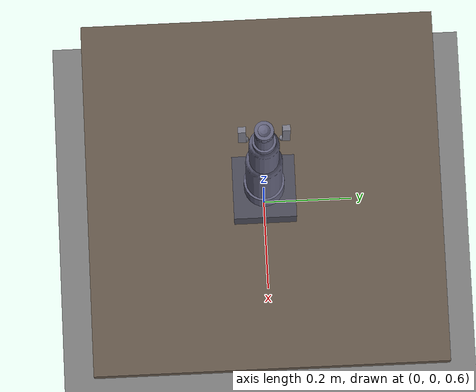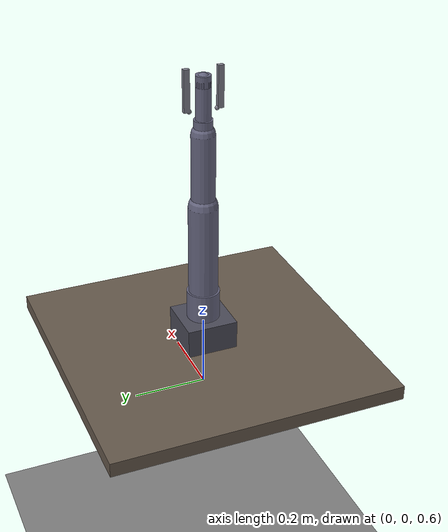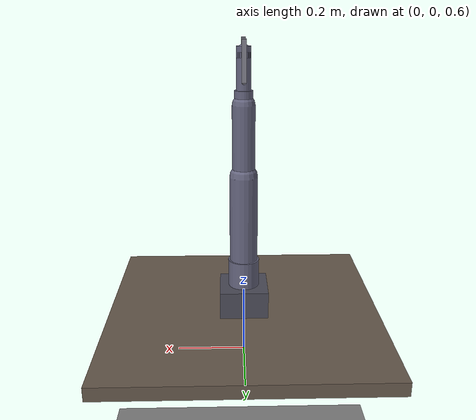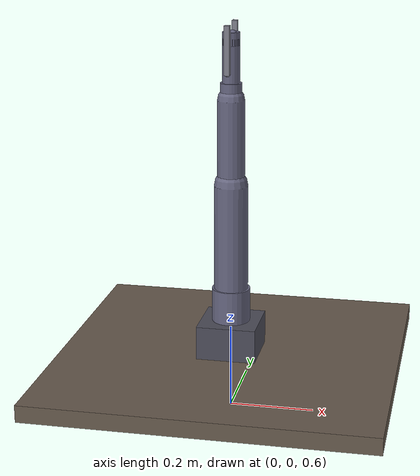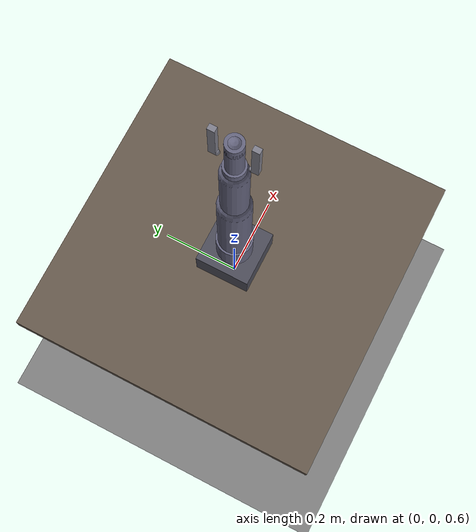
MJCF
<?xml version="1.0"?>
<!--
6轴通用协作机械臂 + 力控夹爪末端 + 桌面场景

自由度: 6 (机械臂) + 2 (夹爪) = 8 DOF
-->
<mujoco model="ylyw_6axis_arm_gripper">
  <compiler angle="radian" meshdir="../meshes"/>
  <option timestep="0.002" gravity="0 0 -9.81" iterations="100" tolerance="1e-10" integrator="implicitfast">
    <flag contact="enable"/>
  </option>

  <asset>
    <material name="base" rgba="0.3 0.3 0.35 1"/>
    <material name="link" rgba="0.4 0.4 0.5 1"/>
    <material name="jaw" rgba="0.5 0.5 0.55 1"/>
    <material name="object" rgba="0.8 0.3 0.2 1"/>
    <material name="table" rgba="0.4 0.35 0.3 1"/>
  </asset>

  <default>
    <geom condim="6" friction="4.0 0.5 0.5"/>
    <joint damping="1.0" armature="0.01"/>
    <position kp="100" kv="15"/>
  </default>

  <worldbody>
    <light pos="0 0 5" dir="0 0 -1" diffuse="0.8 0.8 0.8"/>
    <light pos="2 2 4" dir="-1 -1 -2" diffuse="0.8 0.8 0.8"/>
    <light pos="-2 2 3" dir="1 -1 -1" diffuse="0.3 0.3 0.3"/>

    <geom name="floor" type="plane" size="2 2 0.01" pos="0 0 0"/>
    <geom name="table" type="box" size="0.4 0.4 0.02" pos="0 0 0.72" material="table"/>

    <body name="object" pos="0 0 0.765">
      <freejoint name="obj_free"/>
      <geom name="obj_geom" type="sphere" size="0.025" mass="0.03" material="object"/>
    </body>

    <!-- 6轴臂 (与 arm6_hand_scene.xml 完全相同) -->
    <body name="base" pos="0 0 0.78">
      <geom name="base_geom" type="box" size="0.07 0.07 0.04" material="base" contype="0" conaffinity="0"/>
      <body name="link1" pos="0 0 0.04">
        <joint name="j1" type="hinge" axis="0 0 1" range="-3.14 3.14" damping="2.0"/>
        <geom name="link1_geom" type="cylinder" size="0.045 0.08" material="link" contype="0" conaffinity="0"/>
        <body name="link2" pos="0 0 0.08">
          <joint name="j2" type="hinge" axis="0 1 0" range="-2.5 2.5" damping="2.0"/>
          <geom name="link2_geom" type="capsule" fromto="0 0 0 0 0 0.25" size="0.04" material="link" contype="0" conaffinity="0"/>
          <body name="link3" pos="0 0 0.25">
            <joint name="j3" type="hinge" axis="0 1 0" range="-2.5 2.5" damping="2.0"/>
            <geom name="link3_geom" type="capsule" fromto="0 0 0 0 0 0.20" size="0.032" material="link" contype="0" conaffinity="0"/>
            <body name="link4" pos="0 0 0.20">
              <joint name="j4" type="hinge" axis="0 0 1" range="-3.14 3.14" damping="1.0"/>
              <geom name="link4_geom" type="cylinder" size="0.025 0.04" material="link" contype="0" conaffinity="0"/>
              <body name="link5" pos="0 0 0.04">
                <joint name="j5" type="hinge" axis="0 1 0" range="-2.0 2.0" damping="1.0"/>
                <geom name="link5_geom" type="capsule" fromto="0 0 0 0 0 0.10" size="0.02" material="link" contype="0" conaffinity="0"/>
                <body name="link6" pos="0 0 0.10">
                  <joint name="j6" type="hinge" axis="0 0 1" range="-3.14 3.14" damping="1.0"/>
                  <geom name="flange" type="cylinder" size="0.02 0.015" material="link" contype="0" conaffinity="0"/>
                  <!-- 力控夹爪 -->
                  <!-- A2: mount 上移且不参与碰撞，避免顶住球体 -->
                  <body name="gripper_base" pos="0 0 -0.02">
                    <geom name="gripper_mount" type="box" size="0.012 0.012 0.010" pos="0 0 0.020" material="link" contype="0" conaffinity="0"/>
                    <!-- 手指间距加宽到 ±0.045（容下 5cm 球），手指加长到 0.055 使指尖低于球心 -->
                    <body name="finger_left" pos="0 0.045 0">
                      <joint name="fl_j" type="slide" axis="0 -1 0" range="-0.08 0.08" damping="1.0" armature="0.001"/>
                      <geom name="fl_geom" type="box" size="0.006 0.008 0.055" material="jaw"/>
                      <geom name="fl_tip" type="sphere" size="0.006" pos="0 -0.008 -0.055" material="jaw"/>
                    </body>
                    <body name="finger_right" pos="0 -0.045 0">
                      <joint name="fr_j" type="slide" axis="0 1 0" range="-0.08 0.08" damping="1.0" armature="0.001"/>
                      <geom name="fr_geom" type="box" size="0.006 0.008 0.055" material="jaw"/>
                      <geom name="fr_tip" type="sphere" size="0.006" pos="0 0.008 -0.055" material="jaw"/>
                    </body>
                  </body>
                </body><!-- link6 -->
              </body><!-- link5 -->
            </body><!-- link4 -->
          </body><!-- link3 -->
        </body><!-- link2 -->
      </body><!-- link1 -->
    </body><!-- base -->
  </worldbody>

  <actuator>
    <position name="j1" joint="j1" kp="200" kv="20"/>
    <position name="j2" joint="j2" kp="200" kv="20"/>
    <position name="j3" joint="j3" kp="200" kv="20"/>
    <position name="j4" joint="j4" kp="100" kv="10"/>
    <position name="j5" joint="j5" kp="100" kv="10"/>
    <position name="j6" joint="j6" kp="50" kv="5"/>
    <!-- A2: 手指改为位置伺服 + 高 kp，提供足够的夹持力（原 gear=1 电机太弱，抓不住） -->
    <position name="fl_motor" joint="fl_j" kp="2000" kv="30" ctrlrange="-0.08 0.08"/>
    <position name="fr_motor" joint="fr_j" kp="2000" kv="30" ctrlrange="-0.08 0.08"/>
  </actuator>
</mujoco>
